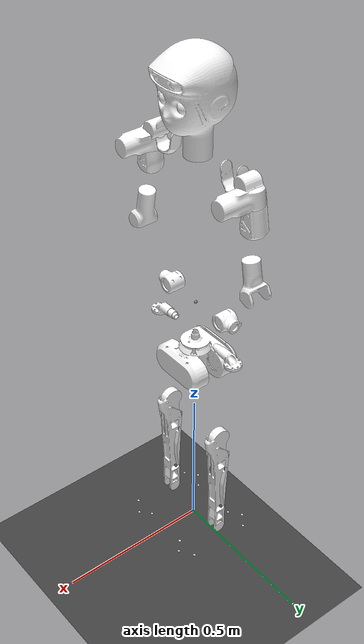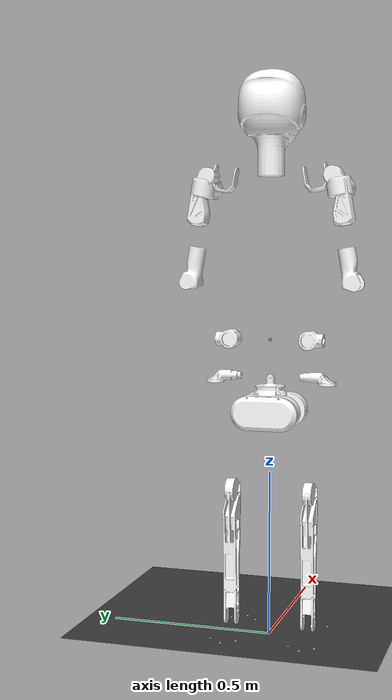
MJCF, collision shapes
<mujoco model="x2 scene">
  <include file="x2.xml"/>

  <statistic center="1.0 0.7 1.0" extent="0.8"/>

  <visual>
    <headlight diffuse="0.6 0.6 0.6" ambient="0.1 0.1 0.1" specular="0.9 0.9 0.9"/>
    <rgba haze="0.15 0.25 0.35 1"/>
    <global azimuth="-140" elevation="-20"/>
  </visual>

  <asset>
    <texture type="skybox" builtin="flat" rgb1="0 0 0" rgb2="0 0 0" width="512" height="3072"/>
    <texture type="2d" name="groundplane" builtin="checker" mark="edge" rgb1="0.2 0.3 0.4" rgb2="0.1 0.2 0.3" markrgb="0.8 0.8 0.8" width="300" height="300"/>
    <material name="groundplane" texture="groundplane" texuniform="true" texrepeat="5 5" reflectance="0.2"/>
  </asset>

  <worldbody>
    <light pos="1 0 3.5" dir="0 0 -1" directional="true"/>
    <geom name="floor" size="0 0 0.05" type="plane" material="groundplane"/>
  </worldbody>
</mujoco>

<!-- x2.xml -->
<mujoco model="x2">
  <compiler angle="radian" meshdir="./meshes/"/>
  <default>
    <joint damping="0.1" armature="0.01" frictionloss="0.1"/>
  </default>
  <asset>
    <texture type="skybox" builtin="gradient" width="128" height="128" rgb1="0.4 0.6 0.8" rgb2="0 0 0"/>
    <texture name="plane" type="2d" builtin="checker" rgb1="0.2 0.2 0.2" rgb2="0.3 0.3 0.3" width="512"
              height="512"/>
    <material name="plane" reflectance="0.0" texture="plane" texrepeat="1 1" texuniform="true"/>
    <material name="collision" rgba="0.1 0.5 0.9 0"/>
    <mesh name="pelvis_link" file="pelvis_link.STL"/>
    <mesh name="L_hip_yaw_link" file="L_hip_yaw_link.STL"/>
    <mesh name="L_hip_roll_link" file="L_hip_roll_link.STL"/>
    <mesh name="L_hip_pitch_link" file="L_hip_pitch_link.STL"/>
    <mesh name="L_knee_pitch_link" file="L_knee_pitch_link.STL"/>
    <mesh name="L_ankle_pitch_link" file="L_ankle_pitch_link.STL"/>
    <mesh name="R_hip_yaw_link" file="R_hip_yaw_link.STL"/>
    <mesh name="R_hip_roll_link" file="R_hip_roll_link.STL"/>
    <mesh name="R_hip_pitch_link" file="R_hip_pitch_link.STL"/>
    <mesh name="R_knee_pitch_link" file="R_knee_pitch_link.STL"/>
    <mesh name="R_ankle_pitch_link" file="R_ankle_pitch_link.STL"/>
    <mesh name="waist_yaw_link" file="waist_yaw_link.STL"/>
    <mesh name="torso_link" file="torso_link.STL"/>
    <mesh name="logo_link" file="logo_link.STL"/>
    <mesh name="head_link" file="head_link.STL"/>
    <mesh name="L_shoulder_pitch_link" file="L_shoulder_pitch_link.STL"/>
    <mesh name="L_shoulder_roll_link" file="L_shoulder_roll_link.STL"/>
    <mesh name="L_shoulder_yaw_link" file="L_shoulder_yaw_link.STL"/>
    <mesh name="L_elbow_pitch_link" file="L_elbow_pitch_link.STL"/>
    <mesh name="R_shoulder_pitch_link" file="R_shoulder_pitch_link.STL"/>
    <mesh name="R_shoulder_roll_link" file="R_shoulder_roll_link.STL"/>
    <mesh name="R_shoulder_yaw_link" file="R_shoulder_yaw_link.STL"/>
    <mesh name="R_elbow_pitch_link" file="R_elbow_pitch_link.STL"/>
  </asset>

  <worldbody>
    <geom name="floor" pos="0.001 0 0" size="100 10 .125" type="plane" material="plane" condim="3"
          conaffinity="15" friction="0.6 0.6 0.001"/>
    <light mode="trackcom" pos="0 0 5" dir="0 0 -1"/>
    <light directional="true" pos="0 0 3" dir="0 0 -1" diffuse="0.2 0.2 0.2" specular="0 0 0"/>
    <body name="pelvis_link" pos="0 0 0.90">>
      <inertial pos="-0.003423 9.09152e-08 0.307997" quat="0.999796 -8.3433e-08 0.0201933 -4.13088e-06" mass="15.9092" diaginertia="0.395894 0.38141 0.0882848"/>
      <joint name="pelvis_link" type="free" limited="false" actuatorfrclimited="false"/>
      <geom type="mesh" contype="0" conaffinity="0" group="1" density="0" rgba="1 1 1 1" mesh="pelvis_link"/>
      <geom type="mesh" rgba="1 1 1 1" mesh="pelvis_link"/>
      <site name="imu" pos="0 0 0"/>
      <geom pos="0 0 0.08375" type="mesh" contype="0" conaffinity="0" group="1" density="0" rgba="1 1 1 1" mesh="waist_yaw_link"/>
      <geom pos="0 0 0.1205" quat="1 0 0 0" type="mesh" contype="0" conaffinity="0" group="1" density="0" rgba="0.823529 0.823529 0.823529 1" mesh="torso_link"/>
      <geom pos="0 0 0.1205" quat="1 0 0 0" type="mesh" contype="0" conaffinity="0" group="1" density="0" rgba="1 0 0 1" mesh="logo_link"/>
      <geom pos="0 0 0.485" quat="1 0 0 0" type="mesh" contype="0" conaffinity="0" group="1" density="0" rgba="1 1 1 1" mesh="head_link"/>
      <geom pos="0 0 0.485" quat="1 0 0 0" type="mesh" rgba="1 1 1 1" mesh="head_link"/>
      <body name="L_hip_yaw_link">
        <inertial pos="-0.0005618 0.019831 0.00885104" quat="0.416547 0.491409 -0.566922 0.513426" mass="0.841" diaginertia="0.00175713 0.00175343 0.000573392"/>
        <joint name="L_hip_yaw" pos="0 0 0" axis="0 0 1" range="-0.7854 0.7854" actuatorfrcrange="-100 100"/>
        <geom type="mesh" contype="0" conaffinity="0" group="1" density="0" rgba="1 1 1 1" mesh="L_hip_yaw_link"/>
        <body name="L_hip_roll_link" pos="-0.0095 0.12 0">
          <inertial pos="-0.0324725 0.00017925 -0.0726484" quat="0.655395 -0.252501 -0.247695 0.667344" mass="2.667" diaginertia="0.0108627 0.0094793 0.00603247"/>
          <joint name="L_hip_roll" pos="0 0 0" axis="1 0 0" range="-0.349 0.524" actuatorfrcrange="-100 100"/>
          <geom type="mesh" contype="0" conaffinity="0" group="1" density="0" rgba="1 1 1 1" mesh="L_hip_roll_link"/>
          <geom type="mesh" rgba="1 1 1 1" mesh="L_hip_roll_link"/>
          <body name="L_hip_pitch_link" pos="0.0085 -0.001 -0.11">
            <inertial pos="0.00382921 0 -0.185484" quat="0.706562 0.0278169 0.0278188 0.706557" mass="1.664" diaginertia="0.0148443 0.0145077 0.0030868"/>
            <joint name="L_hip_pitch" pos="0 0 0" axis="0 -1 0" range="-0.526 2.4434" actuatorfrcrange="-100 100"/>
            <geom type="mesh" contype="0" conaffinity="0" group="1" density="0" rgba="1 1 1 1" mesh="L_hip_pitch_link"/>
            <geom type="mesh" rgba="1 1 1 1" mesh="L_hip_pitch_link"/>
            <body name="L_knee_pitch_link" pos="0 0 -0.35">
              <inertial pos="0.00140265 0 -0.15876" quat="0.706958 -0.0143173 -0.0143148 0.706965" mass="1.125" diaginertia="0.00999859 0.00987345 0.00100926"/>
              <joint name="L_knee_pitch" pos="0 0 0" axis="0 -1 0" range="-2.3561 0" actuatorfrcrange="-100 100"/>
              <geom type="mesh" contype="0" conaffinity="0" group="1" density="0" rgba="1 1 1 1" mesh="L_knee_pitch_link"/>
              <geom type="mesh" rgba="1 1 1 1" mesh="L_knee_pitch_link"/>
              <body name="L_ankle_pitch_link" pos="0 0 -0.35">
                <inertial pos="0.0393988 -0.000237278 -0.0784143" quat="0 0.705556 0 0.708654" mass="0.556154" diaginertia="0.00260004 0.00215 0.000549961"/>
                <joint name="L_ankle_pitch" pos="0 0 0" axis="0 -1 0" range="-1.2217 1.2217" actuatorfrcrange="-50 50"/>
                <geom type="mesh" contype="0" conaffinity="0" group="1" density="0" rgba="1 1 1 1" mesh="L_ankle_pitch_link" euler="0 0.07 0"/>
                <geom size="0.005" pos="-0.12   0     -0.095" rgba="1 1 1 1"/>
                <geom size="0.005" pos="-0.09   0.039 -0.095" rgba="1 1 1 1"/>
                <geom size="0.005" pos="-0.09  -0.039 -0.095" rgba="1 1 1 1"/>
                <geom size="0.005" pos="0.12    0.035 -0.095" rgba="1 1 1 1"/>
                <geom size="0.005" pos="0.12   -0.043 -0.095" rgba="1 1 1 1"/>
                <geom size="0.005" pos="0.15   -0.01  -0.095" rgba="1 1 1 1"/>

              </body>
            </body>
          </body>
        </body>
      </body>
      <body name="R_hip_yaw_link">
        <inertial pos="-0.00116447 -0.0404495 0" quat="0.707002 0.707002 -0.0121739 -0.0121739" mass="0.219202" diaginertia="0.000598763 0.000555362 0.000156982"/>
        <joint name="R_hip_yaw" pos="0 0 0" axis="0 0 -1" range="-0.7854 0.7854" actuatorfrcrange="-100 100"/>
        <geom type="mesh" contype="0" conaffinity="0" group="1" density="0" rgba="1 1 1 1" mesh="R_hip_yaw_link"/>
        <body name="R_hip_roll_link" pos="-0.0095 -0.12 0">
          <inertial pos="-0.0324725 0.00017925 -0.0726484" quat="0.655395 -0.252501 -0.247695 0.667344" mass="2.667" diaginertia="0.0108627 0.0094793 0.00603247"/>
          <joint name="R_hip_roll" pos="0 0 0" axis="-1 0 0" range="-0.349 0.524" actuatorfrcrange="-100 100"/>
          <geom type="mesh" contype="0" conaffinity="0" group="1" density="0" rgba="1 1 1 1" mesh="R_hip_roll_link"/>
          <geom type="mesh" rgba="1 1 1 1" mesh="R_hip_roll_link"/>
          <body name="R_hip_pitch_link" pos="0.0085 -0.001 -0.11">
            <inertial pos="0.00382921 0 -0.185485" quat="0.706557 0.0278188 0.0278169 0.706562" mass="1.664" diaginertia="0.0148443 0.0145077 0.0030868"/>
            <joint name="R_hip_pitch" pos="0 0 0" axis="0 -1 0" range="-0.526 2.4434" actuatorfrcrange="-100 100"/>
            <geom type="mesh" contype="0" conaffinity="0" group="1" density="0" rgba="1 1 1 1" mesh="R_hip_pitch_link"/>
            <geom type="mesh" rgba="1 1 1 1" mesh="R_hip_pitch_link"/>
            <body name="R_knee_pitch_link" pos="0 0 -0.35">
              <inertial pos="0.00140265 0 -0.15876" quat="0.706965 -0.0143148 -0.0143173 0.706958" mass="1.125" diaginertia="0.00999859 0.00987345 0.00100926"/>
              <joint name="R_knee_pitch" pos="0 0 0" axis="0 -1 0" range="-2.3561 0" actuatorfrcrange="-100 100"/>
              <geom type="mesh" contype="0" conaffinity="0" group="1" density="0" rgba="1 1 1 1" mesh="R_knee_pitch_link"/>
              <geom type="mesh" rgba="1 1 1 1" mesh="R_knee_pitch_link"/>
              <body name="R_ankle_pitch_link" pos="0 0 -0.35">
                <inertial pos="0.0393998 0.00023708 -0.0784145" quat="0 0.705556 0 0.708654" mass="0.556161" diaginertia="0.00260004 0.00215 0.000549961"/>
                <joint name="R_ankle_pitch" pos="0 0 0" axis="0 -1 0" range="-1.2217 1.2217" actuatorfrcrange="-50 50"/>
                <geom type="mesh" contype="0" conaffinity="0" group="1" density="0" rgba="1 1 1 1" mesh="R_ankle_pitch_link" euler="0 0.07 0"/>
                <geom size="0.005" pos="-0.12   0     -0.095" rgba="1 1 1 1"/>
                <geom size="0.005" pos="-0.09   0.039 -0.095" rgba="1 1 1 1"/>
                <geom size="0.005" pos="-0.09  -0.039 -0.095" rgba="1 1 1 1"/>
                <geom size="0.005" pos="0.12   -0.035 -0.095" rgba="1 1 1 1"/>
                <geom size="0.005" pos="0.12    0.043 -0.095" rgba="1 1 1 1"/>
                <geom size="0.005" pos="0.15    0.01  -0.095" rgba="1 1 1 1"/>
              </body>
            </body>
          </body>
        </body>
      </body>
      <body name="L_shoulder_pitch_link" pos="-0.01 0.14477 0.43584" quat="0.996195 0.0871543 0 0">
        <inertial pos="0 0.0287048 6.45e-05" quat="0.000604104 0.707107 0.000604104 0.707107" mass="0.08" diaginertia="9.30701e-05 6.96599e-05 4.183e-05"/>
        <joint name="L_shoulder_pitch" pos="0 0 0" axis="0 -1 0" range="-2 2" actuatorfrcrange="-30 30"/>
        <geom type="mesh" contype="0" conaffinity="0" group="1" density="0" rgba="1 1 1 1" mesh="L_shoulder_pitch_link"/>
        <geom type="mesh" rgba="1 1 1 1" mesh="L_shoulder_pitch_link"/>
        <body name="L_shoulder_roll_link" pos="0 0.061 0">
          <inertial pos="-0.00014962 0.00021332 -0.0425362" quat="0.707314 -0.000506345 0.00377108 0.706889" mass="0.8" diaginertia="0.000555526 0.000535819 0.000122295"/>
          <joint name="L_shoulder_roll" pos="0 0 0" axis="1 0 0" range="-0.35 1.57" actuatorfrcrange="-30 30"/>
          <geom type="mesh" contype="0" conaffinity="0" group="1" density="0" rgba="1 1 1 1" mesh="L_shoulder_roll_link"/>
          <geom type="mesh" rgba="1 1 1 1" mesh="L_shoulder_roll_link"/>
          <body name="L_shoulder_yaw_link" pos="0 0 -0.112">
            <inertial pos="0.0049554 -0.00024132 -0.14234" quat="0.999356 0.00104793 0.0349421 -0.00803437" mass="0.5" diaginertia="0.000629602 0.000609218 9.69596e-05"/>
            <joint name="L_shoulder_yaw" pos="0 0 0" axis="0 0 1" range="-2.618 2.618" actuatorfrcrange="-30 30"/>
            <geom type="mesh" contype="0" conaffinity="0" group="1" density="0" rgba="1 1 1 1" mesh="L_shoulder_yaw_link"/>
            <geom type="mesh" rgba="1 1 1 1" mesh="L_shoulder_yaw_link"/>
            <body name="L_elbow_pitch_link" pos="0.01 0 -0.173" quat="0.707388 0 -0.706825 0">
              <inertial pos="-0.0123066 0 -0.21266" quat="0.999963 5.39253e-06 -0.00855256 0.000630494" mass="0.1" diaginertia="0.000488126 0.00048799 2.44366e-05"/>
              <joint name="L_elbow_pitch" pos="0 0 0" axis="0 -1 0" range="-2.5 2.5" actuatorfrcrange="-30 30"/>
              <geom type="mesh" contype="0" conaffinity="0" group="1" density="0" rgba="1 1 1 1" mesh="L_elbow_pitch_link"/>
              <geom type="mesh" rgba="1 1 1 1" mesh="L_elbow_pitch_link"/>
            </body>
          </body>
        </body>
      </body>
      <body name="R_shoulder_pitch_link" pos="-0.01 -0.14477 0.43584" quat="0.996195 -0.0871543 0 0">
        <inertial pos="0 -0.0287048 6.45e-05" quat="-0.000604104 0.707107 -0.000604104 0.707107" mass="0.08" diaginertia="9.30701e-05 6.96599e-05 4.183e-05"/>
        <joint name="R_shoulder_pitch" pos="0 0 0" axis="0 -1 0" range="-2 2" actuatorfrcrange="-30 30"/>
        <geom type="mesh" contype="0" conaffinity="0" group="1" density="0" rgba="1 1 1 1" mesh="R_shoulder_pitch_link"/>
        <geom type="mesh" rgba="1 1 1 1" mesh="R_shoulder_pitch_link"/>
        <body name="R_shoulder_roll_link" pos="0 -0.061 0">
          <inertial pos="0.00014963 -0.00021332 -0.0425362" quat="0.707314 0.000506345 -0.00377108 0.706889" mass="0.8" diaginertia="0.000555526 0.000535819 0.000122295"/>
          <joint name="R_shoulder_roll" pos="0 0 0" axis="-1 0 0" range="-0.35 1.57" actuatorfrcrange="-30 30"/>
          <geom type="mesh" contype="0" conaffinity="0" group="1" density="0" rgba="1 1 1 1" mesh="R_shoulder_roll_link"/>
          <geom type="mesh" rgba="1 1 1 1" mesh="R_shoulder_roll_link"/>
          <body name="R_shoulder_yaw_link" pos="-3.8964e-05 0 -0.112">
            <inertial pos="0.0049944 -0.00024129 -0.142337" quat="0.999356 0.00104793 0.0349421 -0.00803437" mass="0.5" diaginertia="0.000629602 0.000609218 9.69596e-05"/>
            <joint name="R_shoulder_yaw" pos="0 0 0" axis="0 0 -1" range="-2.618 2.618" actuatorfrcrange="-30 30"/>
            <geom type="mesh" contype="0" conaffinity="0" group="1" density="0" rgba="1 1 1 1" mesh="R_shoulder_yaw_link"/>
            <geom type="mesh" rgba="1 1 1 1" mesh="R_shoulder_yaw_link"/>
            <body name="R_elbow_pitch_link" pos="0.010039 0 -0.173" quat="0.707388 0 -0.706825 0">
              <inertial pos="-0.0123066 0 -0.21266" quat="0.999963 5.39253e-06 -0.00855256 0.000630494" mass="0.1" diaginertia="0.000488126 0.00048799 2.44366e-05"/>
              <joint name="R_elbow_pitch" pos="0 0 0" axis="0 -1 0" range="-2.5 2.5" actuatorfrcrange="-30 30"/>
              <geom type="mesh" contype="0" conaffinity="0" group="1" density="0" rgba="1 1 1 1" mesh="R_elbow_pitch_link"/>
              <geom type="mesh" rgba="1 1 1 1" mesh="R_elbow_pitch_link"/>
            </body>
          </body>
        </body>
      </body>
    </body>
  </worldbody>

  <actuator>
  <!-- 左腿 -->
  <motor joint="L_hip_yaw" gear="1" ctrlrange="-88 88"/>
  <motor joint="L_hip_roll" gear="1" ctrlrange="-88 88"/>
  <motor joint="L_hip_pitch" gear="1" ctrlrange="-88 88"/>
  <motor joint="L_knee_pitch" gear="1" ctrlrange="-88 88"/>
  <motor joint="L_ankle_pitch" gear="1" ctrlrange="-88 88" />
  <!-- 右腿 -->
  <motor joint="R_hip_yaw" gear="1" ctrlrange="-88 88"/>
  <motor joint="R_hip_roll" gear="1" ctrlrange="-88 88"/>
  <motor joint="R_hip_pitch" gear="1" ctrlrange="-88 88"/>
  <motor joint="R_knee_pitch" gear="1" ctrlrange="-88 88"/>
  <motor joint="R_ankle_pitch" gear="1" ctrlrange="-88 88"/>
  <!-- 左臂 -->
  <motor joint="L_shoulder_pitch" gear="1" ctrlrange="-88 88"/>
  <motor joint="L_shoulder_roll" gear="1" ctrlrange="-88 88"/>
  <motor joint="L_shoulder_yaw" gear="1" ctrlrange="-88 88"/>
  <motor joint="L_elbow_pitch" gear="1" ctrlrange="-88 88"/>
  <!-- 右臂 -->
  <motor joint="R_shoulder_pitch" gear="1" ctrlrange="-88 88"/>
  <motor joint="R_shoulder_roll" gear="1" ctrlrange="-88 88"/>
  <motor joint="R_shoulder_yaw" gear="1" ctrlrange="-88 88"/>
  <motor joint="R_elbow_pitch" gear="1" ctrlrange="-88 88"/>
</actuator>
  <sensor>

        <framequat name="BodyQuat" objtype="site" objname="imu"/>
  </sensor>
</mujoco>
